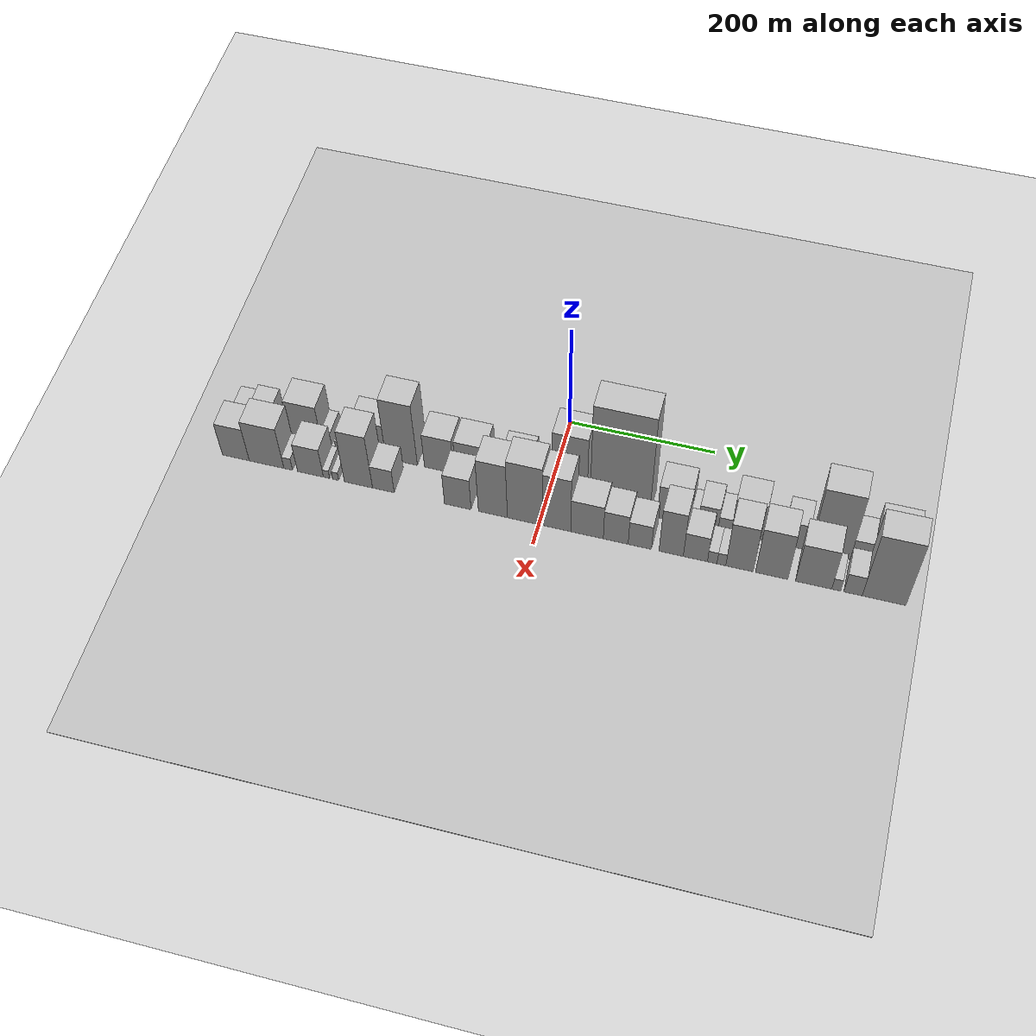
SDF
<sdf version="1.6">
 <world name="default">
  <include><name>ground_plane_1</name><uri>model://HANNAS_ground_plane</uri></include>
  <include>
   <name>ground_plane_2</name>
   <uri>model://HANNAS_ground_plane</uri>
   <pose>100 0 0  0 0 0</pose>
  </include>
  <model name="building_1">
   <static>1</static>
   <pose>100.0000 -426.3887 0 0.000000 0.000000 0.000000</pose>
   <link name="link">
    <pose>0 0 19.50 0 0 0</pose>
    <collision name="collision"><geometry><box><size>40.0000 23.2227 39.0000</size></box></geometry></collision>
    <visual name="visual">
     <cast_shadows>0</cast_shadows>
     <geometry><box><size>40.0000 23.2227 39.0000</size></box></geometry>
     <material>
      <script>
       <uri>model://HANNAS_wall/materials/scripts</uri>
       <uri>model://HANNAS_wall/materials/textures</uri>
       <name>vrc/HANNAS_wall</name>
      </script>
     </material>
    </visual>
   </link>
  </model>
  <model name="building_2">
   <static>1</static>
   <pose>100.0000 -396.7674 0 0.000000 0.000000 0.000000</pose>
   <link name="link">
    <pose>0 0 25.50 0 0 0</pose>
    <collision name="collision"><geometry><box><size>40.0000 30.0198 51.0000</size></box></geometry></collision>
    <visual name="visual">
     <cast_shadows>0</cast_shadows>
     <geometry><box><size>40.0000 30.0198 51.0000</size></box></geometry>
     <material>
      <script>
       <uri>model://HANNAS_wall/materials/scripts</uri>
       <uri>model://HANNAS_wall/materials/textures</uri>
       <name>vrc/HANNAS_wall</name>
      </script>
     </material>
    </visual>
   </link>
  </model>
  <model name="building_3">
   <static>1</static>
   <pose>100.0000 -372.8966 0 0.000000 0.000000 0.000000</pose>
   <link name="link">
    <pose>0 0 12.00 0 0 0</pose>
    <collision name="collision"><geometry><box><size>40.0000 11.7219 24.0000</size></box></geometry></collision>
    <visual name="visual">
     <cast_shadows>0</cast_shadows>
     <geometry><box><size>40.0000 11.7219 24.0000</size></box></geometry>
     <material>
      <script>
       <uri>model://HANNAS_wall/materials/scripts</uri>
       <uri>model://HANNAS_wall/materials/textures</uri>
       <name>vrc/HANNAS_wall</name>
      </script>
     </material>
    </visual>
   </link>
  </model>
  <model name="building_4">
   <static>1</static>
   <pose>100.0000 -363.0210 0 0.000000 0.000000 0.000000</pose>
   <link name="link">
    <pose>0 0 9.00 0 0 0</pose>
    <collision name="collision"><geometry><box><size>40.0000 8.0293 18.0000</size></box></geometry></collision>
    <visual name="visual">
     <cast_shadows>0</cast_shadows>
     <geometry><box><size>40.0000 8.0293 18.0000</size></box></geometry>
     <material>
      <script>
       <uri>model://HANNAS_wall/materials/scripts</uri>
       <uri>model://HANNAS_wall/materials/textures</uri>
       <name>vrc/HANNAS_wall</name>
      </script>
     </material>
    </visual>
   </link>
  </model>
  <model name="building_5">
   <static>1</static>
   <pose>100.0000 -336.6942 0 0.000000 0.000000 0.000000</pose>
   <link name="link">
    <pose>0 0 42.00 0 0 0</pose>
    <collision name="collision"><geometry><box><size>40.0000 44.6241 84.0000</size></box></geometry></collision>
    <visual name="visual">
     <cast_shadows>0</cast_shadows>
     <geometry><box><size>40.0000 44.6241 84.0000</size></box></geometry>
     <material>
      <script>
       <uri>model://HANNAS_wall/materials/scripts</uri>
       <uri>model://HANNAS_wall/materials/textures</uri>
       <name>vrc/HANNAS_wall</name>
      </script>
     </material>
    </visual>
   </link>
  </model>
  <model name="building_6">
   <static>1</static>
   <pose>100.0000 -307.7203 0 0.000000 0.000000 0.000000</pose>
   <link name="link">
    <pose>0 0 13.50 0 0 0</pose>
    <collision name="collision"><geometry><box><size>40.0000 13.3238 27.0000</size></box></geometry></collision>
    <visual name="visual">
     <cast_shadows>0</cast_shadows>
     <geometry><box><size>40.0000 13.3238 27.0000</size></box></geometry>
     <material>
      <script>
       <uri>model://HANNAS_wall/materials/scripts</uri>
       <uri>model://HANNAS_wall/materials/textures</uri>
       <name>vrc/HANNAS_wall</name>
      </script>
     </material>
    </visual>
   </link>
  </model>
  <model name="building_7">
   <static>1</static>
   <pose>100.0000 -291.9711 0 0.000000 0.000000 0.000000</pose>
   <link name="link">
    <pose>0 0 7.50 0 0 0</pose>
    <collision name="collision"><geometry><box><size>40.0000 6.1748 15.0000</size></box></geometry></collision>
    <visual name="visual">
     <cast_shadows>0</cast_shadows>
     <geometry><box><size>40.0000 6.1748 15.0000</size></box></geometry>
     <material>
      <script>
       <uri>model://HANNAS_wall/materials/scripts</uri>
       <uri>model://HANNAS_wall/materials/textures</uri>
       <name>vrc/HANNAS_wall</name>
      </script>
     </material>
    </visual>
   </link>
  </model>
  <model name="building_8">
   <static>1</static>
   <pose>100.0000 -275.5394 0 0.000000 0.000000 0.000000</pose>
   <link name="link">
    <pose>0 0 15.00 0 0 0</pose>
    <collision name="collision"><geometry><box><size>40.0000 16.6886 30.0000</size></box></geometry></collision>
    <visual name="visual">
     <cast_shadows>0</cast_shadows>
     <geometry><box><size>40.0000 16.6886 30.0000</size></box></geometry>
     <material>
      <script>
       <uri>model://HANNAS_wall/materials/scripts</uri>
       <uri>model://HANNAS_wall/materials/textures</uri>
       <name>vrc/HANNAS_wall</name>
      </script>
     </material>
    </visual>
   </link>
  </model>
  <model name="building_9">
   <static>1</static>
   <pose>100.0000 -245.6892 0 0.000000 0.000000 0.000000</pose>
   <link name="link">
    <pose>0 0 37.50 0 0 0</pose>
    <collision name="collision"><geometry><box><size>40.0000 43.0118 75.0000</size></box></geometry></collision>
    <visual name="visual">
     <cast_shadows>0</cast_shadows>
     <geometry><box><size>40.0000 43.0118 75.0000</size></box></geometry>
     <material>
      <script>
       <uri>model://HANNAS_wall/materials/scripts</uri>
       <uri>model://HANNAS_wall/materials/textures</uri>
       <name>vrc/HANNAS_wall</name>
      </script>
     </material>
    </visual>
   </link>
  </model>
  <model name="building_10">
   <static>1</static>
   <pose>100.0000 -202.2182 0 0.000000 0.000000 0.000000</pose>
   <link name="link">
    <pose>0 0 67.50 0 0 0</pose>
    <collision name="collision"><geometry><box><size>40.0000 43.9301 135.0000</size></box></geometry></collision>
    <visual name="visual">
     <cast_shadows>0</cast_shadows>
     <geometry><box><size>40.0000 43.9301 135.0000</size></box></geometry>
     <material>
      <script>
       <uri>model://HANNAS_wall/materials/scripts</uri>
       <uri>model://HANNAS_wall/materials/textures</uri>
       <name>vrc/HANNAS_wall</name>
      </script>
     </material>
    </visual>
   </link>
  </model>
  <model name="building_11">
   <static>1</static>
   <pose>100.0000 -150.1324 0 0.000000 0.000000 0.000000</pose>
   <link name="link">
    <pose>0 0 37.50 0 0 0</pose>
    <collision name="collision"><geometry><box><size>40.0000 40.2415 75.0000</size></box></geometry></collision>
    <visual name="visual">
     <cast_shadows>0</cast_shadows>
     <geometry><box><size>40.0000 40.2415 75.0000</size></box></geometry>
     <material>
      <script>
       <uri>model://HANNAS_wall/materials/scripts</uri>
       <uri>model://HANNAS_wall/materials/textures</uri>
       <name>vrc/HANNAS_wall</name>
      </script>
     </material>
    </visual>
   </link>
  </model>
  <model name="building_12">
   <static>1</static>
   <pose>100.0000 -105.3474 0 0.000000 0.000000 0.000000</pose>
   <link name="link">
    <pose>0 0 37.50 0 0 0</pose>
    <collision name="collision"><geometry><box><size>40.0000 43.3285 75.0000</size></box></geometry></collision>
    <visual name="visual">
     <cast_shadows>0</cast_shadows>
     <geometry><box><size>40.0000 43.3285 75.0000</size></box></geometry>
     <material>
      <script>
       <uri>model://HANNAS_wall/materials/scripts</uri>
       <uri>model://HANNAS_wall/materials/textures</uri>
       <name>vrc/HANNAS_wall</name>
      </script>
     </material>
    </visual>
   </link>
  </model>
  <model name="building_13">
   <static>1</static>
   <pose>100.0000 -80.5882 0 0.000000 0.000000 0.000000</pose>
   <link name="link">
    <pose>0 0 7.50 0 0 0</pose>
    <collision name="collision"><geometry><box><size>40.0000 6.1899 15.0000</size></box></geometry></collision>
    <visual name="visual">
     <cast_shadows>0</cast_shadows>
     <geometry><box><size>40.0000 6.1899 15.0000</size></box></geometry>
     <material>
      <script>
       <uri>model://HANNAS_wall/materials/scripts</uri>
       <uri>model://HANNAS_wall/materials/textures</uri>
       <name>vrc/HANNAS_wall</name>
      </script>
     </material>
    </visual>
   </link>
  </model>
  <model name="building_14">
   <static>1</static>
   <pose>100.0000 -68.8111 0 0.000000 0.000000 0.000000</pose>
   <link name="link">
    <pose>0 0 13.50 0 0 0</pose>
    <collision name="collision"><geometry><box><size>40.0000 11.3644 27.0000</size></box></geometry></collision>
    <visual name="visual">
     <cast_shadows>0</cast_shadows>
     <geometry><box><size>40.0000 11.3644 27.0000</size></box></geometry>
     <material>
      <script>
       <uri>model://HANNAS_wall/materials/scripts</uri>
       <uri>model://HANNAS_wall/materials/textures</uri>
       <name>vrc/HANNAS_wall</name>
      </script>
     </material>
    </visual>
   </link>
  </model>
  <model name="building_15">
   <static>1</static>
   <pose>100.0000 -43.0724 0 0.000000 0.000000 0.000000</pose>
   <link name="link">
    <pose>0 0 34.50 0 0 0</pose>
    <collision name="collision"><geometry><box><size>40.0000 40.1130 69.0000</size></box></geometry></collision>
    <visual name="visual">
     <cast_shadows>0</cast_shadows>
     <geometry><box><size>40.0000 40.1130 69.0000</size></box></geometry>
     <material>
      <script>
       <uri>model://HANNAS_wall/materials/scripts</uri>
       <uri>model://HANNAS_wall/materials/textures</uri>
       <name>vrc/HANNAS_wall</name>
      </script>
     </material>
    </visual>
   </link>
  </model>
  <model name="building_16">
   <static>1</static>
   <pose>100.0000 -5.7262 0 0.000000 0.000000 0.000000</pose>
   <link name="link">
    <pose>0 0 19.50 0 0 0</pose>
    <collision name="collision"><geometry><box><size>40.0000 22.5795 39.0000</size></box></geometry></collision>
    <visual name="visual">
     <cast_shadows>0</cast_shadows>
     <geometry><box><size>40.0000 22.5795 39.0000</size></box></geometry>
     <material>
      <script>
       <uri>model://HANNAS_wall/materials/scripts</uri>
       <uri>model://HANNAS_wall/materials/textures</uri>
       <name>vrc/HANNAS_wall</name>
      </script>
     </material>
    </visual>
   </link>
  </model>
  <model name="building_17">
   <static>1</static>
   <pose>100.0000 29.0630 0 0.000000 0.000000 0.000000</pose>
   <link name="link">
    <pose>0 0 72.00 0 0 0</pose>
    <collision name="collision"><geometry><box><size>40.0000 46.9989 144.0000</size></box></geometry></collision>
    <visual name="visual">
     <cast_shadows>0</cast_shadows>
     <geometry><box><size>40.0000 46.9989 144.0000</size></box></geometry>
     <material>
      <script>
       <uri>model://HANNAS_wall/materials/scripts</uri>
       <uri>model://HANNAS_wall/materials/textures</uri>
       <name>vrc/HANNAS_wall</name>
      </script>
     </material>
    </visual>
   </link>
  </model>
  <model name="building_18">
   <static>1</static>
   <pose>100.0000 96.7073 0 0.000000 0.000000 0.000000</pose>
   <link name="link">
    <pose>0 0 109.50 0 0 0</pose>
    <collision name="collision"><geometry><box><size>40.0000 80.2898 219.0000</size></box></geometry></collision>
    <visual name="visual">
     <cast_shadows>0</cast_shadows>
     <geometry><box><size>40.0000 80.2898 219.0000</size></box></geometry>
     <material>
      <script>
       <uri>model://HANNAS_wall/materials/scripts</uri>
       <uri>model://HANNAS_wall/materials/textures</uri>
       <name>vrc/HANNAS_wall</name>
      </script>
     </material>
    </visual>
   </link>
  </model>
  <model name="building_19">
   <static>1</static>
   <pose>100.0000 168.4553 0 0.000000 0.000000 0.000000</pose>
   <link name="link">
    <pose>0 0 37.50 0 0 0</pose>
    <collision name="collision"><geometry><box><size>40.0000 43.2062 75.0000</size></box></geometry></collision>
    <visual name="visual">
     <cast_shadows>0</cast_shadows>
     <geometry><box><size>40.0000 43.2062 75.0000</size></box></geometry>
     <material>
      <script>
       <uri>model://HANNAS_wall/materials/scripts</uri>
       <uri>model://HANNAS_wall/materials/textures</uri>
       <name>vrc/HANNAS_wall</name>
      </script>
     </material>
    </visual>
   </link>
  </model>
  <model name="building_20">
   <static>1</static>
   <pose>100.0000 195.6542 0 0.000000 0.000000 0.000000</pose>
   <link name="link">
    <pose>0 0 13.50 0 0 0</pose>
    <collision name="collision"><geometry><box><size>40.0000 11.1917 27.0000</size></box></geometry></collision>
    <visual name="visual">
     <cast_shadows>0</cast_shadows>
     <geometry><box><size>40.0000 11.1917 27.0000</size></box></geometry>
     <material>
      <script>
       <uri>model://HANNAS_wall/materials/scripts</uri>
       <uri>model://HANNAS_wall/materials/textures</uri>
       <name>vrc/HANNAS_wall</name>
      </script>
     </material>
    </visual>
   </link>
  </model>
  <model name="building_21">
   <static>1</static>
   <pose>100.0000 214.5139 0 0.000000 0.000000 0.000000</pose>
   <link name="link">
    <pose>0 0 25.50 0 0 0</pose>
    <collision name="collision"><geometry><box><size>40.0000 26.5276 51.0000</size></box></geometry></collision>
    <visual name="visual">
     <cast_shadows>0</cast_shadows>
     <geometry><box><size>40.0000 26.5276 51.0000</size></box></geometry>
     <material>
      <script>
       <uri>model://HANNAS_wall/materials/scripts</uri>
       <uri>model://HANNAS_wall/materials/textures</uri>
       <name>vrc/HANNAS_wall</name>
      </script>
     </material>
    </visual>
   </link>
  </model>
  <model name="building_22">
   <static>1</static>
   <pose>100.0000 236.5427 0 0.000000 0.000000 0.000000</pose>
   <link name="link">
    <pose>0 0 16.50 0 0 0</pose>
    <collision name="collision"><geometry><box><size>40.0000 17.5299 33.0000</size></box></geometry></collision>
    <visual name="visual">
     <cast_shadows>0</cast_shadows>
     <geometry><box><size>40.0000 17.5299 33.0000</size></box></geometry>
     <material>
      <script>
       <uri>model://HANNAS_wall/materials/scripts</uri>
       <uri>model://HANNAS_wall/materials/textures</uri>
       <name>vrc/HANNAS_wall</name>
      </script>
     </material>
    </visual>
   </link>
  </model>
  <model name="building_23">
   <static>1</static>
   <pose>100.0000 265.5960 0 0.000000 0.000000 0.000000</pose>
   <link name="link">
    <pose>0 0 40.50 0 0 0</pose>
    <collision name="collision"><geometry><box><size>40.0000 40.5767 81.0000</size></box></geometry></collision>
    <visual name="visual">
     <cast_shadows>0</cast_shadows>
     <geometry><box><size>40.0000 40.5767 81.0000</size></box></geometry>
     <material>
      <script>
       <uri>model://HANNAS_wall/materials/scripts</uri>
       <uri>model://HANNAS_wall/materials/textures</uri>
       <name>vrc/HANNAS_wall</name>
      </script>
     </material>
    </visual>
   </link>
  </model>
  <model name="building_24">
   <static>1</static>
   <pose>100.0000 290.6424 0 0.000000 0.000000 0.000000</pose>
   <link name="link">
    <pose>0 0 10.50 0 0 0</pose>
    <collision name="collision"><geometry><box><size>40.0000 9.5162 21.0000</size></box></geometry></collision>
    <visual name="visual">
     <cast_shadows>0</cast_shadows>
     <geometry><box><size>40.0000 9.5162 21.0000</size></box></geometry>
     <material>
      <script>
       <uri>model://HANNAS_wall/materials/scripts</uri>
       <uri>model://HANNAS_wall/materials/textures</uri>
       <name>vrc/HANNAS_wall</name>
      </script>
     </material>
    </visual>
   </link>
  </model>
  <model name="building_25">
   <static>1</static>
   <pose>100.0000 306.9530 0 0.000000 0.000000 0.000000</pose>
   <link name="link">
    <pose>0 0 12.00 0 0 0</pose>
    <collision name="collision"><geometry><box><size>40.0000 11.1051 24.0000</size></box></geometry></collision>
    <visual name="visual">
     <cast_shadows>0</cast_shadows>
     <geometry><box><size>40.0000 11.1051 24.0000</size></box></geometry>
     <material>
      <script>
       <uri>model://HANNAS_wall/materials/scripts</uri>
       <uri>model://HANNAS_wall/materials/textures</uri>
       <name>vrc/HANNAS_wall</name>
      </script>
     </material>
    </visual>
   </link>
  </model>
  <model name="building_26">
   <static>1</static>
   <pose>100.0000 327.8213 0 0.000000 0.000000 0.000000</pose>
   <link name="link">
    <pose>0 0 28.50 0 0 0</pose>
    <collision name="collision"><geometry><box><size>40.0000 30.6314 57.0000</size></box></geometry></collision>
    <visual name="visual">
     <cast_shadows>0</cast_shadows>
     <geometry><box><size>40.0000 30.6314 57.0000</size></box></geometry>
     <material>
      <script>
       <uri>model://HANNAS_wall/materials/scripts</uri>
       <uri>model://HANNAS_wall/materials/textures</uri>
       <name>vrc/HANNAS_wall</name>
      </script>
     </material>
    </visual>
   </link>
  </model>
  <model name="building_27">
   <static>1</static>
   <pose>100.0000 375.0072 0 0.000000 0.000000 0.000000</pose>
   <link name="link">
    <pose>0 0 73.50 0 0 0</pose>
    <collision name="collision"><geometry><box><size>40.0000 51.7404 147.0000</size></box></geometry></collision>
    <visual name="visual">
     <cast_shadows>0</cast_shadows>
     <geometry><box><size>40.0000 51.7404 147.0000</size></box></geometry>
     <material>
      <script>
       <uri>model://HANNAS_wall/materials/scripts</uri>
       <uri>model://HANNAS_wall/materials/textures</uri>
       <name>vrc/HANNAS_wall</name>
      </script>
     </material>
    </visual>
   </link>
  </model>
  <model name="building_28">
   <static>1</static>
   <pose>100.0000 413.5301 0 0.000000 0.000000 0.000000</pose>
   <link name="link">
    <pose>0 0 24.00 0 0 0</pose>
    <collision name="collision"><geometry><box><size>40.0000 25.3054 48.0000</size></box></geometry></collision>
    <visual name="visual">
     <cast_shadows>0</cast_shadows>
     <geometry><box><size>40.0000 25.3054 48.0000</size></box></geometry>
     <material>
      <script>
       <uri>model://HANNAS_wall/materials/scripts</uri>
       <uri>model://HANNAS_wall/materials/textures</uri>
       <name>vrc/HANNAS_wall</name>
      </script>
     </material>
    </visual>
   </link>
  </model>
  <model name="building_29">
   <static>1</static>
   <pose>100.0000 451.0566 0 0.000000 0.000000 0.000000</pose>
   <link name="link">
    <pose>0 0 43.50 0 0 0</pose>
    <collision name="collision"><geometry><box><size>40.0000 49.7477 87.0000</size></box></geometry></collision>
    <visual name="visual">
     <cast_shadows>0</cast_shadows>
     <geometry><box><size>40.0000 49.7477 87.0000</size></box></geometry>
     <material>
      <script>
       <uri>model://HANNAS_wall/materials/scripts</uri>
       <uri>model://HANNAS_wall/materials/textures</uri>
       <name>vrc/HANNAS_wall</name>
      </script>
     </material>
    </visual>
   </link>
  </model>
  <model name="building_30">
   <static>1</static>
   <pose>149.0000 -418.8940 0 0.000000 0.000000 0.000000</pose>
   <link name="link">
    <pose>0 0 36.00 0 0 0</pose>
    <collision name="collision"><geometry><box><size>40.0000 38.2121 72.0000</size></box></geometry></collision>
    <visual name="visual">
     <cast_shadows>0</cast_shadows>
     <geometry><box><size>40.0000 38.2121 72.0000</size></box></geometry>
     <material>
      <script>
       <uri>model://HANNAS_wall/materials/scripts</uri>
       <uri>model://HANNAS_wall/materials/textures</uri>
       <name>vrc/HANNAS_wall</name>
      </script>
     </material>
    </visual>
   </link>
  </model>
  <model name="building_31">
   <static>1</static>
   <pose>149.0000 -375.3886 0 0.000000 0.000000 0.000000</pose>
   <link name="link">
    <pose>0 0 45.00 0 0 0</pose>
    <collision name="collision"><geometry><box><size>40.0000 48.7986 90.0000</size></box></geometry></collision>
    <visual name="visual">
     <cast_shadows>0</cast_shadows>
     <geometry><box><size>40.0000 48.7986 90.0000</size></box></geometry>
     <material>
      <script>
       <uri>model://HANNAS_wall/materials/scripts</uri>
       <uri>model://HANNAS_wall/materials/textures</uri>
       <name>vrc/HANNAS_wall</name>
      </script>
     </material>
    </visual>
   </link>
  </model>
  <model name="building_32">
   <static>1</static>
   <pose>149.0000 -344.9177 0 0.000000 0.000000 0.000000</pose>
   <link name="link">
    <pose>0 0 13.50 0 0 0</pose>
    <collision name="collision"><geometry><box><size>40.0000 12.1432 27.0000</size></box></geometry></collision>
    <visual name="visual">
     <cast_shadows>0</cast_shadows>
     <geometry><box><size>40.0000 12.1432 27.0000</size></box></geometry>
     <material>
      <script>
       <uri>model://HANNAS_wall/materials/scripts</uri>
       <uri>model://HANNAS_wall/materials/textures</uri>
       <name>vrc/HANNAS_wall</name>
      </script>
     </material>
    </visual>
   </link>
  </model>
  <model name="building_33">
   <static>1</static>
   <pose>149.0000 -313.6939 0 0.000000 0.000000 0.000000</pose>
   <link name="link">
    <pose>0 0 31.50 0 0 0</pose>
    <collision name="collision"><geometry><box><size>40.0000 36.3045 63.0000</size></box></geometry></collision>
    <visual name="visual">
     <cast_shadows>0</cast_shadows>
     <geometry><box><size>40.0000 36.3045 63.0000</size></box></geometry>
     <material>
      <script>
       <uri>model://HANNAS_wall/materials/scripts</uri>
       <uri>model://HANNAS_wall/materials/textures</uri>
       <name>vrc/HANNAS_wall</name>
      </script>
     </material>
    </visual>
   </link>
  </model>
  <model name="building_34">
   <static>1</static>
   <pose>149.0000 -291.1912 0 0.000000 0.000000 0.000000</pose>
   <link name="link">
    <pose>0 0 9.00 0 0 0</pose>
    <collision name="collision"><geometry><box><size>40.0000 8.7007 18.0000</size></box></geometry></collision>
    <visual name="visual">
     <cast_shadows>0</cast_shadows>
     <geometry><box><size>40.0000 8.7007 18.0000</size></box></geometry>
     <material>
      <script>
       <uri>model://HANNAS_wall/materials/scripts</uri>
       <uri>model://HANNAS_wall/materials/textures</uri>
       <name>vrc/HANNAS_wall</name>
      </script>
     </material>
    </visual>
   </link>
  </model>
  <model name="building_35">
   <static>1</static>
   <pose>149.0000 -278.5158 0 0.000000 0.000000 0.000000</pose>
   <link name="link">
    <pose>0 0 9.00 0 0 0</pose>
    <collision name="collision"><geometry><box><size>40.0000 8.6501 18.0000</size></box></geometry></collision>
    <visual name="visual">
     <cast_shadows>0</cast_shadows>
     <geometry><box><size>40.0000 8.6501 18.0000</size></box></geometry>
     <material>
      <script>
       <uri>model://HANNAS_wall/materials/scripts</uri>
       <uri>model://HANNAS_wall/materials/textures</uri>
       <name>vrc/HANNAS_wall</name>
      </script>
     </material>
    </visual>
   </link>
  </model>
  <model name="building_36">
   <static>1</static>
   <pose>149.0000 -246.6801 0 0.000000 0.000000 0.000000</pose>
   <link name="link">
    <pose>0 0 58.50 0 0 0</pose>
    <collision name="collision"><geometry><box><size>40.0000 39.0213 117.0000</size></box></geometry></collision>
    <visual name="visual">
     <cast_shadows>0</cast_shadows>
     <geometry><box><size>40.0000 39.0213 117.0000</size></box></geometry>
     <material>
      <script>
       <uri>model://HANNAS_wall/materials/scripts</uri>
       <uri>model://HANNAS_wall/materials/textures</uri>
       <name>vrc/HANNAS_wall</name>
      </script>
     </material>
    </visual>
   </link>
  </model>
  <model name="building_37">
   <static>1</static>
   <pose>149.0000 -212.1749 0 0.000000 0.000000 0.000000</pose>
   <link name="link">
    <pose>0 0 25.50 0 0 0</pose>
    <collision name="collision"><geometry><box><size>40.0000 29.9891 51.0000</size></box></geometry></collision>
    <visual name="visual">
     <cast_shadows>0</cast_shadows>
     <geometry><box><size>40.0000 29.9891 51.0000</size></box></geometry>
     <material>
      <script>
       <uri>model://HANNAS_wall/materials/scripts</uri>
       <uri>model://HANNAS_wall/materials/textures</uri>
       <name>vrc/HANNAS_wall</name>
      </script>
     </material>
    </visual>
   </link>
  </model>
  <model name="building_38">
   <static>1</static>
   <pose>149.0000 -109.8525 0 0.000000 0.000000 0.000000</pose>
   <link name="link">
    <pose>0 0 34.50 0 0 0</pose>
    <collision name="collision"><geometry><box><size>40.0000 36.2186 69.0000</size></box></geometry></collision>
    <visual name="visual">
     <cast_shadows>0</cast_shadows>
     <geometry><box><size>40.0000 36.2186 69.0000</size></box></geometry>
     <material>
      <script>
       <uri>model://HANNAS_wall/materials/scripts</uri>
       <uri>model://HANNAS_wall/materials/textures</uri>
       <name>vrc/HANNAS_wall</name>
      </script>
     </material>
    </visual>
   </link>
  </model>
  <model name="building_39">
   <static>1</static>
   <pose>149.0000 -62.0220 0 0.000000 0.000000 0.000000</pose>
   <link name="link">
    <pose>0 0 60.00 0 0 0</pose>
    <collision name="collision"><geometry><box><size>40.0000 39.4423 120.0000</size></box></geometry></collision>
    <visual name="visual">
     <cast_shadows>0</cast_shadows>
     <geometry><box><size>40.0000 39.4423 120.0000</size></box></geometry>
     <material>
      <script>
       <uri>model://HANNAS_wall/materials/scripts</uri>
       <uri>model://HANNAS_wall/materials/textures</uri>
       <name>vrc/HANNAS_wall</name>
      </script>
     </material>
    </visual>
   </link>
  </model>
  <model name="building_40">
   <static>1</static>
   <pose>149.0000 -18.5001 0 0.000000 0.000000 0.000000</pose>
   <link name="link">
    <pose>0 0 66.00 0 0 0</pose>
    <collision name="collision"><geometry><box><size>40.0000 47.6015 132.0000</size></box></geometry></collision>
    <visual name="visual">
     <cast_shadows>0</cast_shadows>
     <geometry><box><size>40.0000 47.6015 132.0000</size></box></geometry>
     <material>
      <script>
       <uri>model://HANNAS_wall/materials/scripts</uri>
       <uri>model://HANNAS_wall/materials/textures</uri>
       <name>vrc/HANNAS_wall</name>
      </script>
     </material>
    </visual>
   </link>
  </model>
  <model name="building_41">
   <static>1</static>
   <pose>149.0000 24.0884 0 0.000000 0.000000 0.000000</pose>
   <link name="link">
    <pose>0 0 60.00 0 0 0</pose>
    <collision name="collision"><geometry><box><size>40.0000 37.5754 120.0000</size></box></geometry></collision>
    <visual name="visual">
     <cast_shadows>0</cast_shadows>
     <geometry><box><size>40.0000 37.5754 120.0000</size></box></geometry>
     <material>
      <script>
       <uri>model://HANNAS_wall/materials/scripts</uri>
       <uri>model://HANNAS_wall/materials/textures</uri>
       <name>vrc/HANNAS_wall</name>
      </script>
     </material>
    </visual>
   </link>
  </model>
  <model name="building_42">
   <static>1</static>
   <pose>149.0000 64.6041 0 0.000000 0.000000 0.000000</pose>
   <link name="link">
    <pose>0 0 37.50 0 0 0</pose>
    <collision name="collision"><geometry><box><size>40.0000 43.4560 75.0000</size></box></geometry></collision>
    <visual name="visual">
     <cast_shadows>0</cast_shadows>
     <geometry><box><size>40.0000 43.4560 75.0000</size></box></geometry>
     <material>
      <script>
       <uri>model://HANNAS_wall/materials/scripts</uri>
       <uri>model://HANNAS_wall/materials/textures</uri>
       <name>vrc/HANNAS_wall</name>
      </script>
     </material>
    </visual>
   </link>
  </model>
  <model name="building_43">
   <static>1</static>
   <pose>149.0000 102.8888 0 0.000000 0.000000 0.000000</pose>
   <link name="link">
    <pose>0 0 33.00 0 0 0</pose>
    <collision name="collision"><geometry><box><size>40.0000 33.1133 66.0000</size></box></geometry></collision>
    <visual name="visual">
     <cast_shadows>0</cast_shadows>
     <geometry><box><size>40.0000 33.1133 66.0000</size></box></geometry>
     <material>
      <script>
       <uri>model://HANNAS_wall/materials/scripts</uri>
       <uri>model://HANNAS_wall/materials/textures</uri>
       <name>vrc/HANNAS_wall</name>
      </script>
     </material>
    </visual>
   </link>
  </model>
  <model name="building_44">
   <static>1</static>
   <pose>149.0000 134.8639 0 0.000000 0.000000 0.000000</pose>
   <link name="link">
    <pose>0 0 27.00 0 0 0</pose>
    <collision name="collision"><geometry><box><size>40.0000 30.8368 54.0000</size></box></geometry></collision>
    <visual name="visual">
     <cast_shadows>0</cast_shadows>
     <geometry><box><size>40.0000 30.8368 54.0000</size></box></geometry>
     <material>
      <script>
       <uri>model://HANNAS_wall/materials/scripts</uri>
       <uri>model://HANNAS_wall/materials/textures</uri>
       <name>vrc/HANNAS_wall</name>
      </script>
     </material>
    </visual>
   </link>
  </model>
  <model name="building_45">
   <static>1</static>
   <pose>149.0000 176.2648 0 0.000000 0.000000 0.000000</pose>
   <link name="link">
    <pose>0 0 49.50 0 0 0</pose>
    <collision name="collision"><geometry><box><size>40.0000 31.9650 99.0000</size></box></geometry></collision>
    <visual name="visual">
     <cast_shadows>0</cast_shadows>
     <geometry><box><size>40.0000 31.9650 99.0000</size></box></geometry>
     <material>
      <script>
       <uri>model://HANNAS_wall/materials/scripts</uri>
       <uri>model://HANNAS_wall/materials/textures</uri>
       <name>vrc/HANNAS_wall</name>
      </script>
     </material>
    </visual>
   </link>
  </model>
  <model name="building_46">
   <static>1</static>
   <pose>149.0000 208.0506 0 0.000000 0.000000 0.000000</pose>
   <link name="link">
    <pose>0 0 28.50 0 0 0</pose>
    <collision name="collision"><geometry><box><size>40.0000 31.6067 57.0000</size></box></geometry></collision>
    <visual name="visual">
     <cast_shadows>0</cast_shadows>
     <geometry><box><size>40.0000 31.6067 57.0000</size></box></geometry>
     <material>
      <script>
       <uri>model://HANNAS_wall/materials/scripts</uri>
       <uri>model://HANNAS_wall/materials/textures</uri>
       <name>vrc/HANNAS_wall</name>
      </script>
     </material>
    </visual>
   </link>
  </model>
  <model name="building_47">
   <static>1</static>
   <pose>149.0000 230.0820 0 0.000000 0.000000 0.000000</pose>
   <link name="link">
    <pose>0 0 13.50 0 0 0</pose>
    <collision name="collision"><geometry><box><size>40.0000 12.4560 27.0000</size></box></geometry></collision>
    <visual name="visual">
     <cast_shadows>0</cast_shadows>
     <geometry><box><size>40.0000 12.4560 27.0000</size></box></geometry>
     <material>
      <script>
       <uri>model://HANNAS_wall/materials/scripts</uri>
       <uri>model://HANNAS_wall/materials/textures</uri>
       <name>vrc/HANNAS_wall</name>
      </script>
     </material>
    </visual>
   </link>
  </model>
  <model name="building_48">
   <static>1</static>
   <pose>149.0000 242.0635 0 0.000000 0.000000 0.000000</pose>
   <link name="link">
    <pose>0 0 13.50 0 0 0</pose>
    <collision name="collision"><geometry><box><size>40.0000 11.5070 27.0000</size></box></geometry></collision>
    <visual name="visual">
     <cast_shadows>0</cast_shadows>
     <geometry><box><size>40.0000 11.5070 27.0000</size></box></geometry>
     <material>
      <script>
       <uri>model://HANNAS_wall/materials/scripts</uri>
       <uri>model://HANNAS_wall/materials/textures</uri>
       <name>vrc/HANNAS_wall</name>
      </script>
     </material>
    </visual>
   </link>
  </model>
  <model name="building_49">
   <static>1</static>
   <pose>149.0000 265.6303 0 0.000000 0.000000 0.000000</pose>
   <link name="link">
    <pose>0 0 51.00 0 0 0</pose>
    <collision name="collision"><geometry><box><size>40.0000 35.6266 102.0000</size></box></geometry></collision>
    <visual name="visual">
     <cast_shadows>0</cast_shadows>
     <geometry><box><size>40.0000 35.6266 102.0000</size></box></geometry>
     <material>
      <script>
       <uri>model://HANNAS_wall/materials/scripts</uri>
       <uri>model://HANNAS_wall/materials/textures</uri>
       <name>vrc/HANNAS_wall</name>
      </script>
     </material>
    </visual>
   </link>
  </model>
  <model name="building_50">
   <static>1</static>
   <pose>149.0000 307.3774 0 0.000000 0.000000 0.000000</pose>
   <link name="link">
    <pose>0 0 52.50 0 0 0</pose>
    <collision name="collision"><geometry><box><size>40.0000 41.8675 105.0000</size></box></geometry></collision>
    <visual name="visual">
     <cast_shadows>0</cast_shadows>
     <geometry><box><size>40.0000 41.8675 105.0000</size></box></geometry>
     <material>
      <script>
       <uri>model://HANNAS_wall/materials/scripts</uri>
       <uri>model://HANNAS_wall/materials/textures</uri>
       <name>vrc/HANNAS_wall</name>
      </script>
     </material>
    </visual>
   </link>
  </model>
  <model name="building_51">
   <static>1</static>
   <pose>149.0000 361.6523 0 0.000000 0.000000 0.000000</pose>
   <link name="link">
    <pose>0 0 45.00 0 0 0</pose>
    <collision name="collision"><geometry><box><size>40.0000 46.6823 90.0000</size></box></geometry></collision>
    <visual name="visual">
     <cast_shadows>0</cast_shadows>
     <geometry><box><size>40.0000 46.6823 90.0000</size></box></geometry>
     <material>
      <script>
       <uri>model://HANNAS_wall/materials/scripts</uri>
       <uri>model://HANNAS_wall/materials/textures</uri>
       <name>vrc/HANNAS_wall</name>
      </script>
     </material>
    </visual>
   </link>
  </model>
  <model name="building_52">
   <static>1</static>
   <pose>149.0000 390.6686 0 0.000000 0.000000 0.000000</pose>
   <link name="link">
    <pose>0 0 13.50 0 0 0</pose>
    <collision name="collision"><geometry><box><size>40.0000 11.3503 27.0000</size></box></geometry></collision>
    <visual name="visual">
     <cast_shadows>0</cast_shadows>
     <geometry><box><size>40.0000 11.3503 27.0000</size></box></geometry>
     <material>
      <script>
       <uri>model://HANNAS_wall/materials/scripts</uri>
       <uri>model://HANNAS_wall/materials/textures</uri>
       <name>vrc/HANNAS_wall</name>
      </script>
     </material>
    </visual>
   </link>
  </model>
  <model name="building_53">
   <static>1</static>
   <pose>149.0000 412.1504 0 0.000000 0.000000 0.000000</pose>
   <link name="link">
    <pose>0 0 22.50 0 0 0</pose>
    <collision name="collision"><geometry><box><size>40.0000 23.6134 45.0000</size></box></geometry></collision>
    <visual name="visual">
     <cast_shadows>0</cast_shadows>
     <geometry><box><size>40.0000 23.6134 45.0000</size></box></geometry>
     <material>
      <script>
       <uri>model://HANNAS_wall/materials/scripts</uri>
       <uri>model://HANNAS_wall/materials/textures</uri>
       <name>vrc/HANNAS_wall</name>
      </script>
     </material>
    </visual>
   </link>
  </model>
  <model name="building_54">
   <static>1</static>
   <pose>149.0000 451.6200 0 0.000000 0.000000 0.000000</pose>
   <link name="link">
    <pose>0 0 73.50 0 0 0</pose>
    <collision name="collision"><geometry><box><size>40.0000 55.3258 147.0000</size></box></geometry></collision>
    <visual name="visual">
     <cast_shadows>0</cast_shadows>
     <geometry><box><size>40.0000 55.3258 147.0000</size></box></geometry>
     <material>
      <script>
       <uri>model://HANNAS_wall/materials/scripts</uri>
       <uri>model://HANNAS_wall/materials/textures</uri>
       <name>vrc/HANNAS_wall</name>
      </script>
     </material>
    </visual>
   </link>
  </model>
 </world>
</sdf>
